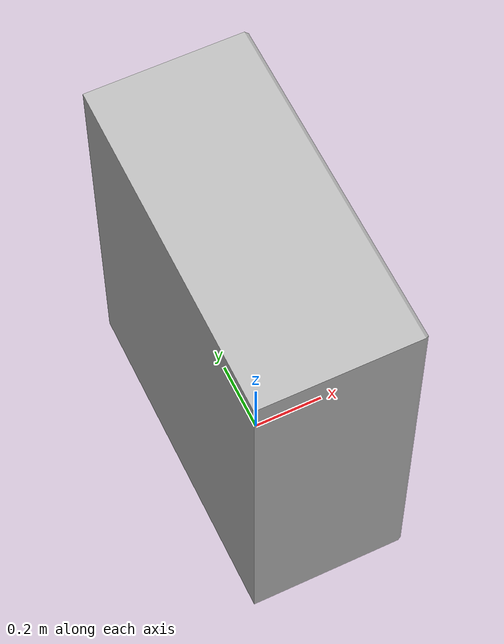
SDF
<?xml version='1.0'?>
<sdf version='1.4'>
  <model name='464'>
    <pose>0 0 0 0 0 0</pose>
    <static>true</static>
    <link name='link'>
      <collision name='collision'>
        <pose>0 0 0 0 0 0</pose>
        <geometry>
          <box>
            <size>0.45997 0.94 2</size>
          </box>
        </geometry>
      </collision>
      <visual name='visual'>
        <pose>0 0 0 0 0 0</pose>
        <geometry>
          <mesh><uri>model://464/464.dae</uri></mesh>
        </geometry>
      </visual>
    </link>
  </model>
</sdf>
